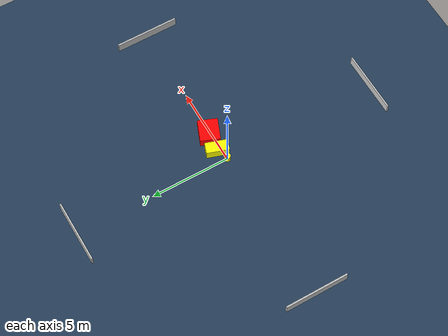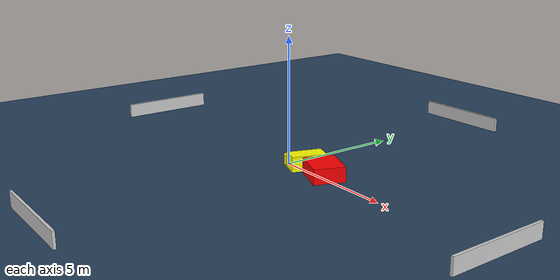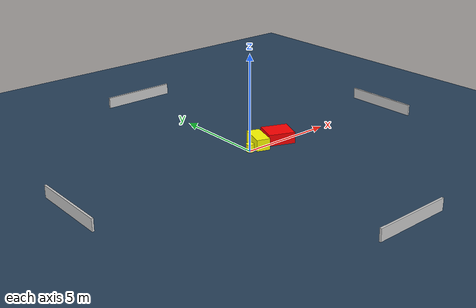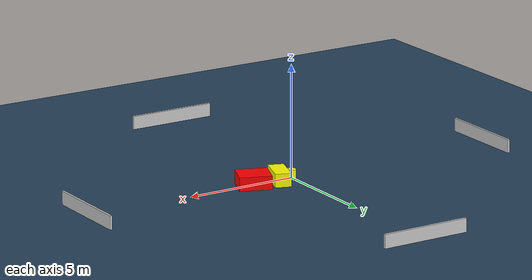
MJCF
<?xml version="1.0" ?>
<mujoco model="generated_environment">
  <option timestep="0.01" integrator="RK4" cone="elliptic"/>
  <default>
    <geom density="1"/>
  </default>
  <asset>
    <texture builtin="gradient" height="3072" name="skybox" rgb1="0.3 0.5 0.7" rgb2="0 0 0" type="skybox" width="512"/>
    <texture builtin="checker" height="300" name="groundplane" rgb1="0.2 0.3 0.4" rgb2="0.1 0.2 0.3" type="2d" width="300"/>
    <material name="groundplane" reflectance="0.2" texrepeat="5 5" texture="groundplane"/>
  </asset>
  <worldbody>
    <light dir="0 0 -1" directional="true" pos="0 0 1.5"/>
    <geom condim="3" friction="0.5 0.005 0.001" material="groundplane" name="floor" pos="0 0 0" size="0 0 0.05" type="plane"/>
    <body name="walls">
      <geom name="wall_1" condim="4" pos="-10.0 0.0 0.3" rgba="0.800000011920929 0.800000011920929 0.800000011920929 1.0" size="0.05 2.0 0.3" type="box"/>
      <geom name="wall_2" condim="4" pos="10.0 0.0 0.3" rgba="0.800000011920929 0.800000011920929 0.800000011920929 1.0" size="0.05 2.0 0.3" type="box"/>
      <geom name="wall_3" condim="4" pos="0.0 -10.0 0.3" rgba="0.800000011920929 0.800000011920929 0.800000011920929 1.0" size="2.0 0.05 0.3" type="box"/>
      <geom name="wall_4" condim="4" pos="0.0 10.0 0.3" rgba="0.800000011920929 0.800000011920929 0.800000011920929 1.0" size="2.0 0.05 0.3" type="box"/>
    </body>
    <body name="robot">
      <joint name="joint_x" type="slide" pos="0 0 0" axis="1 0 0"/>
      <joint name="joint_y" type="slide" pos="0 0 0" axis="0 1 0"/>
      <geom name="robot" type="cylinder" pos="0.0 0.0 0.2" size="0.2 0.2 0.0" mass="5.0" friction="1.0 0.005 0.0001" condim="4" rgba="1.0 1.0 0.0 1.0"/>
    </body>
    <body name="obstacle_1_movable">
      <geom name="obstacle_1_movable" condim="4" pos="0.7721328577329276 0.2646354857605613 0.3" euler="0 0 251.31835833147733" friction="0.0 0.005 0.001" rgba="1.0 1.0 0.0 1.0" size="0.700037197886785 0.3546434631912614 0.3" type="box" mass="0.1"/>
      <joint type="free"/>
    </body>
    <body name="obstacle_2_static">
      <geom name="obstacle_2_static" condim="4" pos="1.9951087536500547 0.12571326618537865 0.3" euler="0 0 247.84186599185418" friction="0.0 0.005 0.001" rgba="1.0 0.0 0.0 1.0" size="0.6179549013491492 0.7069820176059185 0.3" type="box"/>
    </body>
  </worldbody>
  <actuator>
    <motor name="actuator_x" joint="joint_x" gear="1" ctrlrange="-1 1"/>
    <motor name="actuator_y" joint="joint_y" gear="1" ctrlrange="-1 1"/>
  </actuator>
</mujoco>
